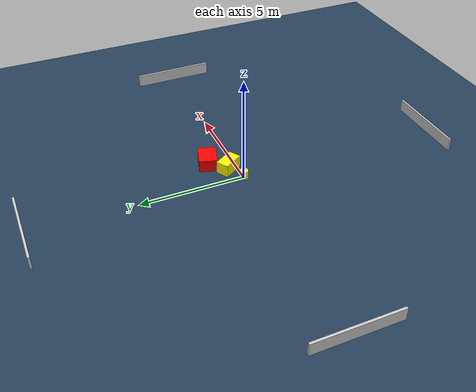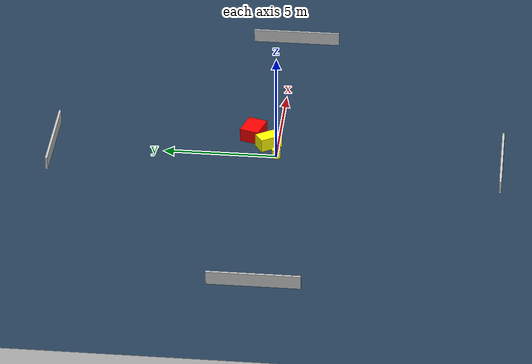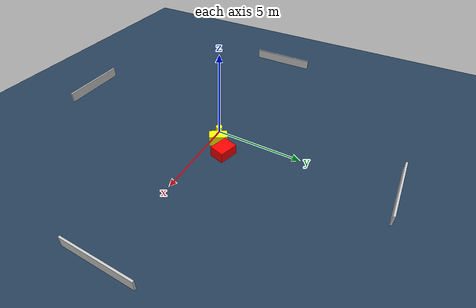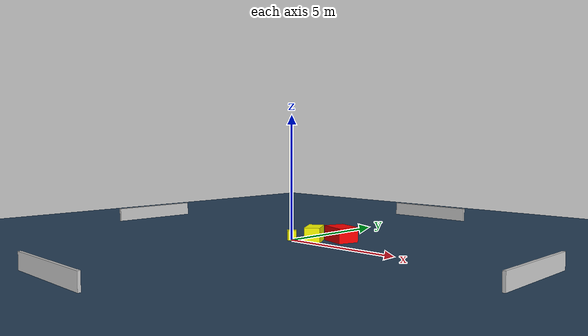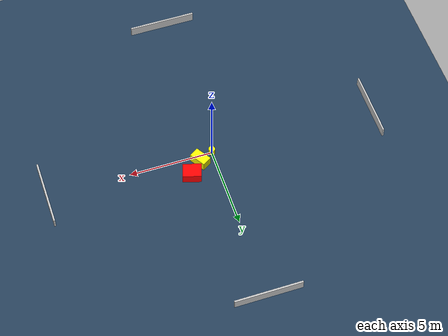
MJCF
<?xml version="1.0" ?>
<mujoco model="generated_environment">
  <option timestep="0.01" integrator="RK4" cone="elliptic"/>
  <default>
    <geom density="1"/>
  </default>
  <asset>
    <texture builtin="gradient" height="3072" name="skybox" rgb1="0.3 0.5 0.7" rgb2="0 0 0" type="skybox" width="512"/>
    <texture builtin="checker" height="300" name="groundplane" rgb1="0.2 0.3 0.4" rgb2="0.1 0.2 0.3" type="2d" width="300"/>
    <material name="groundplane" reflectance="0.2" texrepeat="5 5" texture="groundplane"/>
  </asset>
  <worldbody>
    <light dir="0 0 -1" directional="true" pos="0 0 1.5"/>
    <geom condim="3" friction="0.5 0.005 0.001" material="groundplane" name="floor" pos="0 0 0" size="0 0 0.05" type="plane"/>
    <body name="walls">
      <geom name="wall_1" condim="4" pos="-10.0 0.0 0.3" rgba="0.800000011920929 0.800000011920929 0.800000011920929 1.0" size="0.05 2.0 0.3" type="box"/>
      <geom name="wall_2" condim="4" pos="10.0 0.0 0.3" rgba="0.800000011920929 0.800000011920929 0.800000011920929 1.0" size="0.05 2.0 0.3" type="box"/>
      <geom name="wall_3" condim="4" pos="0.0 -10.0 0.3" rgba="0.800000011920929 0.800000011920929 0.800000011920929 1.0" size="2.0 0.05 0.3" type="box"/>
      <geom name="wall_4" condim="4" pos="0.0 10.0 0.3" rgba="0.800000011920929 0.800000011920929 0.800000011920929 1.0" size="2.0 0.05 0.3" type="box"/>
    </body>
    <body name="robot">
      <joint name="joint_x" type="slide" pos="0 0 0" axis="1 0 0"/>
      <joint name="joint_y" type="slide" pos="0 0 0" axis="0 1 0"/>
      <geom name="robot" type="cylinder" pos="0.0 0.0 0.2" size="0.2 0.2 0.0" mass="5.0" friction="1.0 0.005 0.0001" condim="4" rgba="1.0 1.0 0.0 1.0"/>
    </body>
    <body name="obstacle_1_movable">
      <geom name="obstacle_1_movable" condim="4" pos="0.8421387669734229 0.4215168243847093 0.3" euler="0 0 31.96960359439235" friction="0.0 0.005 0.001" rgba="1.0 1.0 0.0 1.0" size="0.3051981706516663 0.5133035632567495 0.3" type="box" mass="0.1"/>
      <joint type="free"/>
    </body>
    <body name="obstacle_2_static">
      <geom name="obstacle_2_static" condim="4" pos="1.5926913998733365 1.1768299467301042 0.3" euler="0 0 73.24399917299827" friction="0.0 0.005 0.001" rgba="1.0 0.0 0.0 1.0" size="0.4322005828724405 0.5528148293034906 0.3" type="box"/>
    </body>
  </worldbody>
  <actuator>
    <motor name="actuator_x" joint="joint_x" gear="1" ctrlrange="-1 1"/>
    <motor name="actuator_y" joint="joint_y" gear="1" ctrlrange="-1 1"/>
  </actuator>
</mujoco>
